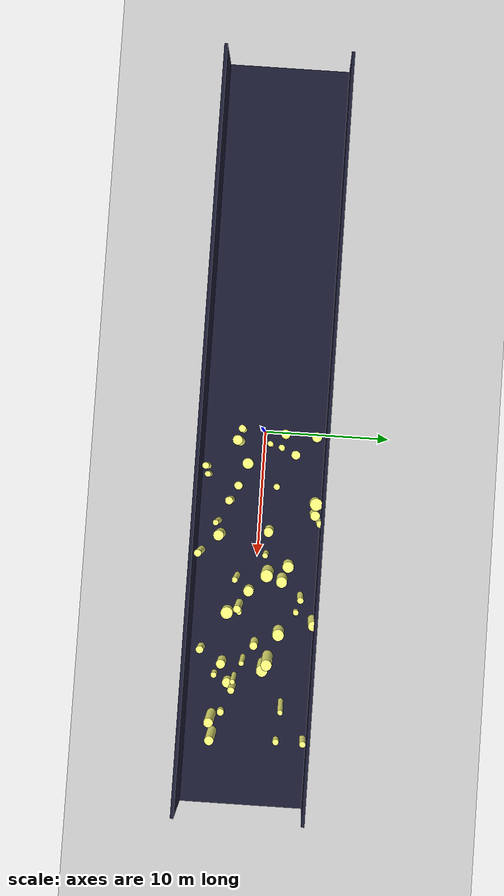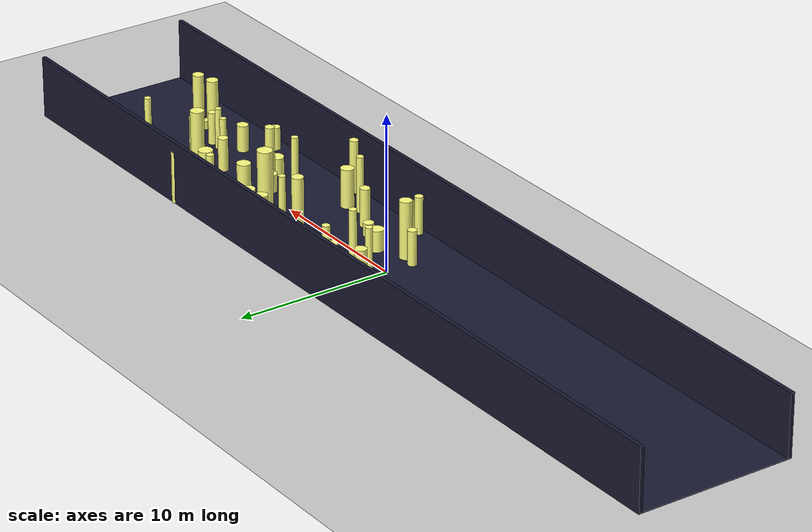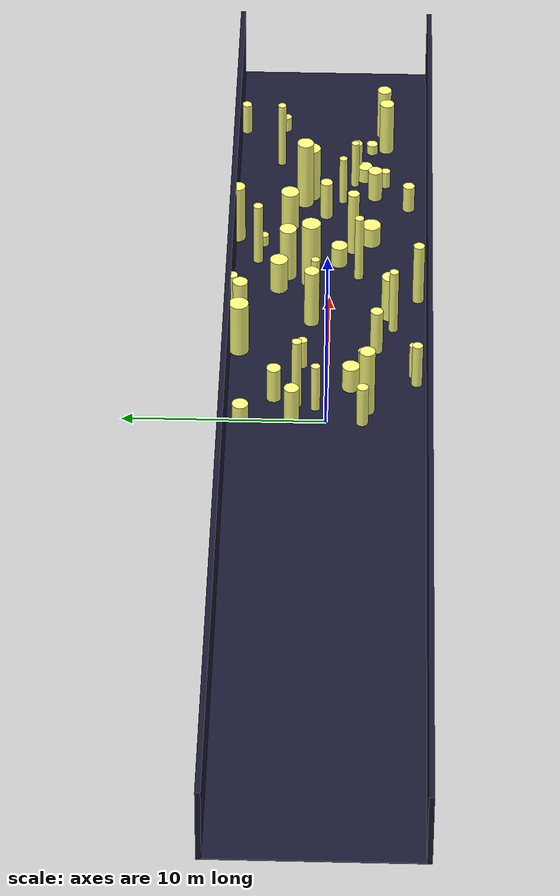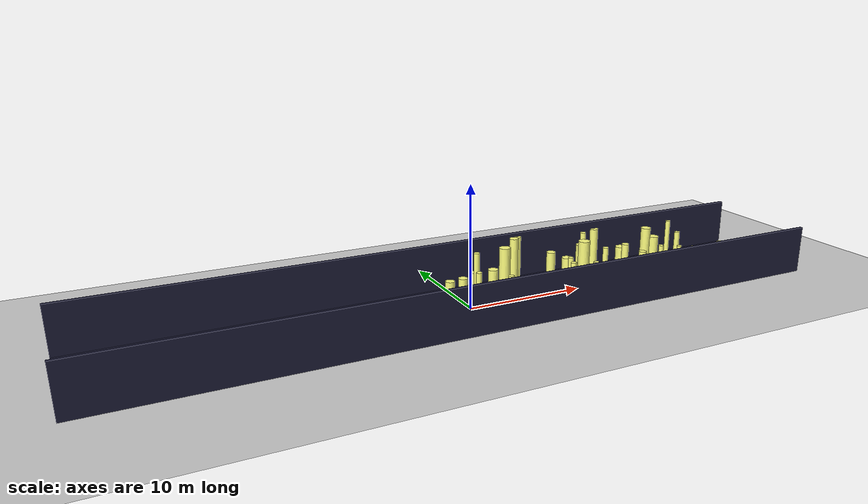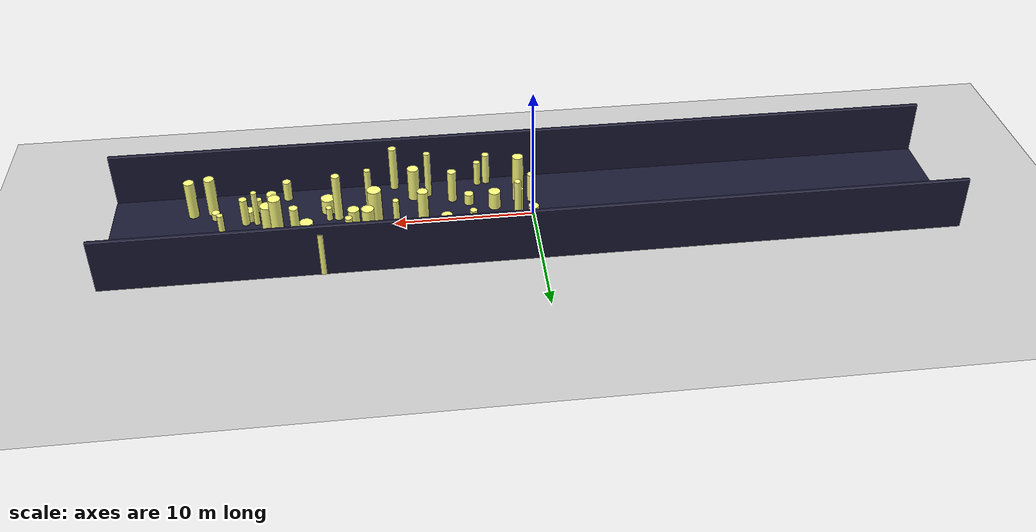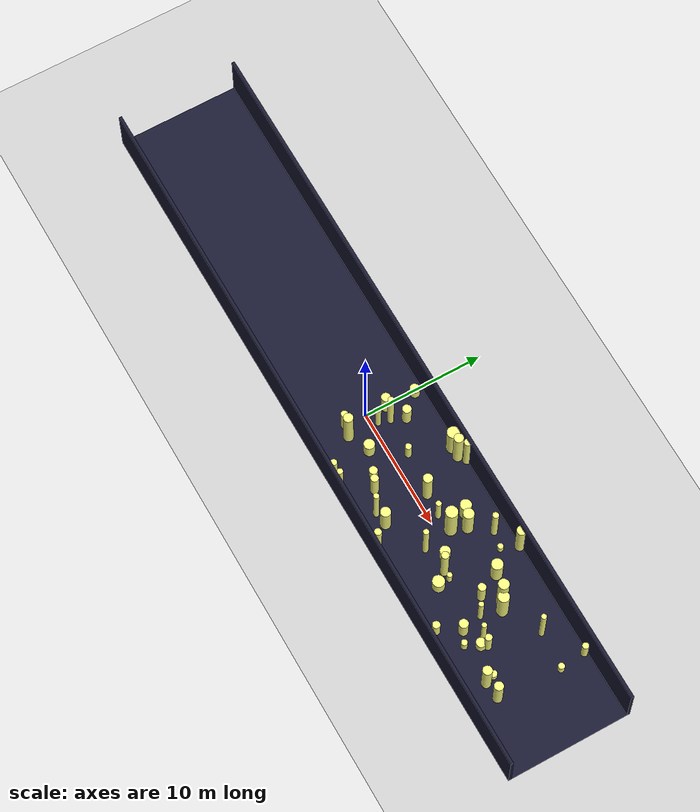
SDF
<sdf version="1.4">
 <world name="default">
  <include><uri>model://ground_plane</uri></include>
  <include><uri>model://sun</uri></include>
  <model name="forest">
   <static>true</static>
   <link name="cylinder2">
    <pose>1.0208947712810428 0.5431389617887925 1.3426531910423 0 0 0</pose>
    <visual name="visual">
     <geometry><cylinder><radius>0.22835501968407046</radius><length>2.6853063820846</length></cylinder></geometry>
     <material>
      <ambient>0.6 0.6 0.6 1</ambient>
      <diffuse>1 1 0.5 1</diffuse>
      <specular>0 0 0</specular>
      <emissive>0 0 0 1</emissive>
     </material>
    </visual>
    <collision name="collision">
     <geometry><cylinder><radius>0.22835501968407046</radius><length>2.6853063820846</length></cylinder></geometry>
     <max_contacts>0</max_contacts>
    </collision>
   </link>
   <link name="cylinder4">
    <pose>14.357380362291096 3.42906190911415 0.33939071130231635 0 0 0</pose>
    <visual name="visual">
     <geometry>
      <cylinder><radius>0.2355430839454062</radius><length>0.6787814226046327</length></cylinder>
     </geometry>
     <material>
      <ambient>0.6 0.6 0.6 1</ambient>
      <diffuse>1 1 0.5 1</diffuse>
      <specular>0 0 0</specular>
      <emissive>0 0 0 1</emissive>
     </material>
    </visual>
    <collision name="collision">
     <geometry>
      <cylinder><radius>0.2355430839454062</radius><length>0.6787814226046327</length></cylinder>
     </geometry>
     <max_contacts>0</max_contacts>
    </collision>
   </link>
   <link name="cylinder5">
    <pose>15.95672619391378 2.1406246882911226 1.1306773054959878 0 0 0</pose>
    <visual name="visual">
     <geometry>
      <cylinder><radius>0.4625027844515846</radius><length>2.2613546109919755</length></cylinder>
     </geometry>
     <material>
      <ambient>0.6 0.6 0.6 1</ambient>
      <diffuse>1 1 0.5 1</diffuse>
      <specular>0 0 0</specular>
      <emissive>0 0 0 1</emissive>
     </material>
    </visual>
    <collision name="collision">
     <geometry>
      <cylinder><radius>0.4625027844515846</radius><length>2.2613546109919755</length></cylinder>
     </geometry>
     <max_contacts>0</max_contacts>
    </collision>
   </link>
   <link name="cylinder6">
    <pose>11.72142793309255 2.1433004032956973 1.518548189066716 0 0 0</pose>
    <visual name="visual">
     <geometry>
      <cylinder><radius>0.43435136117066747</radius><length>3.037096378133432</length></cylinder>
     </geometry>
     <material>
      <ambient>0.6 0.6 0.6 1</ambient>
      <diffuse>1 1 0.5 1</diffuse>
      <specular>0 0 0</specular>
      <emissive>0 0 0 1</emissive>
     </material>
    </visual>
    <collision name="collision">
     <geometry>
      <cylinder><radius>0.43435136117066747</radius><length>3.037096378133432</length></cylinder>
     </geometry>
     <max_contacts>0</max_contacts>
    </collision>
   </link>
   <link name="cylinder8">
    <pose>19.699465234413196 -1.1801976092368216 1.3649806478278046 0 0 0</pose>
    <visual name="visual">
     <geometry>
      <cylinder><radius>0.20254438403527164</radius><length>2.729961295655609</length></cylinder>
     </geometry>
     <material>
      <ambient>0.6 0.6 0.6 1</ambient>
      <diffuse>1 1 0.5 1</diffuse>
      <specular>0 0 0</specular>
      <emissive>0 0 0 1</emissive>
     </material>
    </visual>
    <collision name="collision">
     <geometry>
      <cylinder><radius>0.20254438403527164</radius><length>2.729961295655609</length></cylinder>
     </geometry>
     <max_contacts>0</max_contacts>
    </collision>
   </link>
   <link name="cylinder10">
    <pose>8.441919910510215 -3.0383918934033707 1.2916391931820514 0 0 0</pose>
    <visual name="visual">
     <geometry>
      <cylinder><radius>0.4134336815046562</radius><length>2.583278386364103</length></cylinder>
     </geometry>
     <material>
      <ambient>0.6 0.6 0.6 1</ambient>
      <diffuse>1 1 0.5 1</diffuse>
      <specular>0 0 0</specular>
      <emissive>0 0 0 1</emissive>
     </material>
    </visual>
    <collision name="collision">
     <geometry>
      <cylinder><radius>0.4134336815046562</radius><length>2.583278386364103</length></cylinder>
     </geometry>
     <max_contacts>0</max_contacts>
    </collision>
   </link>
   <link name="cylinder12">
    <pose>24.27517334014935 -2.6602131412921546 1.470125046250434 0 0 0</pose>
    <visual name="visual">
     <geometry>
      <cylinder><radius>0.36455640942420675</radius><length>2.940250092500868</length></cylinder>
     </geometry>
     <material>
      <ambient>0.6 0.6 0.6 1</ambient>
      <diffuse>1 1 0.5 1</diffuse>
      <specular>0 0 0</specular>
      <emissive>0 0 0 1</emissive>
     </material>
    </visual>
    <collision name="collision">
     <geometry>
      <cylinder><radius>0.36455640942420675</radius><length>2.940250092500868</length></cylinder>
     </geometry>
     <max_contacts>0</max_contacts>
    </collision>
   </link>
   <link name="cylinder14">
    <pose>22.65406599161711 -2.0612876650250778 0.30610132249239846 0 0 0</pose>
    <visual name="visual">
     <geometry>
      <cylinder><radius>0.2918572696765596</radius><length>0.6122026449847969</length></cylinder>
     </geometry>
     <material>
      <ambient>0.6 0.6 0.6 1</ambient>
      <diffuse>1 1 0.5 1</diffuse>
      <specular>0 0 0</specular>
      <emissive>0 0 0 1</emissive>
     </material>
    </visual>
    <collision name="collision">
     <geometry>
      <cylinder><radius>0.2918572696765596</radius><length>0.6122026449847969</length></cylinder>
     </geometry>
     <max_contacts>0</max_contacts>
    </collision>
   </link>
   <link name="cylinder18">
    <pose>17.615794449780587 -3.985222112901603 0.7751889481892782 0 0 0</pose>
    <visual name="visual">
     <geometry>
      <cylinder><radius>0.30276084775036843</radius><length>1.5503778963785564</length></cylinder>
     </geometry>
     <material>
      <ambient>0.6 0.6 0.6 1</ambient>
      <diffuse>1 1 0.5 1</diffuse>
      <specular>0 0 0</specular>
      <emissive>0 0 0 1</emissive>
     </material>
    </visual>
    <collision name="collision">
     <geometry>
      <cylinder><radius>0.30276084775036843</radius><length>1.5503778963785564</length></cylinder>
     </geometry>
     <max_contacts>0</max_contacts>
    </collision>
   </link>
   <link name="cylinder20">
    <pose>24.43067726238239 4.62530078184065 0.8967429362178146 0 0 0</pose>
    <visual name="visual">
     <geometry>
      <cylinder><radius>0.25407514421779676</radius><length>1.7934858724356293</length></cylinder>
     </geometry>
     <material>
      <ambient>0.6 0.6 0.6 1</ambient>
      <diffuse>1 1 0.5 1</diffuse>
      <specular>0 0 0</specular>
      <emissive>0 0 0 1</emissive>
     </material>
    </visual>
    <collision name="collision">
     <geometry>
      <cylinder><radius>0.25407514421779676</radius><length>1.7934858724356293</length></cylinder>
     </geometry>
     <max_contacts>0</max_contacts>
    </collision>
   </link>
   <link name="cylinder21">
    <pose>24.65642489110388 2.5068368066967732 0.4347260987845433 0 0 0</pose>
    <visual name="visual">
     <geometry>
      <cylinder><radius>0.25245440863690455</radius><length>0.8694521975690866</length></cylinder>
     </geometry>
     <material>
      <ambient>0.6 0.6 0.6 1</ambient>
      <diffuse>1 1 0.5 1</diffuse>
      <specular>0 0 0</specular>
      <emissive>0 0 0 1</emissive>
     </material>
    </visual>
    <collision name="collision">
     <geometry>
      <cylinder><radius>0.25245440863690455</radius><length>0.8694521975690866</length></cylinder>
     </geometry>
     <max_contacts>0</max_contacts>
    </collision>
   </link>
   <link name="cylinder25">
    <pose>16.9242625028197 0.27205600537427177 1.1013196231043145 0 0 0</pose>
    <visual name="visual">
     <geometry>
      <cylinder><radius>0.3196346392363912</radius><length>2.202639246208629</length></cylinder>
     </geometry>
     <material>
      <ambient>0.6 0.6 0.6 1</ambient>
      <diffuse>1 1 0.5 1</diffuse>
      <specular>0 0 0</specular>
      <emissive>0 0 0 1</emissive>
     </material>
    </visual>
    <collision name="collision">
     <geometry>
      <cylinder><radius>0.3196346392363912</radius><length>2.202639246208629</length></cylinder>
     </geometry>
     <max_contacts>0</max_contacts>
    </collision>
   </link>
   <link name="cylinder27">
    <pose>1.766755526100173 2.604636848300447 0.9732648832684428 0 0 0</pose>
    <visual name="visual">
     <geometry>
      <cylinder><radius>0.35749040720921466</radius><length>1.9465297665368857</length></cylinder>
     </geometry>
     <material>
      <ambient>0.6 0.6 0.6 1</ambient>
      <diffuse>1 1 0.5 1</diffuse>
      <specular>0 0 0</specular>
      <emissive>0 0 0 1</emissive>
     </material>
    </visual>
    <collision name="collision">
     <geometry>
      <cylinder><radius>0.35749040720921466</radius><length>1.9465297665368857</length></cylinder>
     </geometry>
     <max_contacts>0</max_contacts>
    </collision>
   </link>
   <link name="cylinder28">
    <pose>22.880518140336733 -2.802426067439696 1.5214850839309941 0 0 0</pose>
    <visual name="visual">
     <geometry>
      <cylinder><radius>0.3747662969486343</radius><length>3.0429701678619883</length></cylinder>
     </geometry>
     <material>
      <ambient>0.6 0.6 0.6 1</ambient>
      <diffuse>1 1 0.5 1</diffuse>
      <specular>0 0 0</specular>
      <emissive>0 0 0 1</emissive>
     </material>
    </visual>
    <collision name="collision">
     <geometry>
      <cylinder><radius>0.3747662969486343</radius><length>3.0429701678619883</length></cylinder>
     </geometry>
     <max_contacts>0</max_contacts>
    </collision>
   </link>
   <link name="cylinder29">
    <pose>14.892574944241282 4.791217000073189 1.6624655020170058 0 0 0</pose>
    <visual name="visual">
     <geometry>
      <cylinder><radius>0.38092229612289386</radius><length>3.3249310040340117</length></cylinder>
     </geometry>
     <material>
      <ambient>0.6 0.6 0.6 1</ambient>
      <diffuse>1 1 0.5 1</diffuse>
      <specular>0 0 0</specular>
      <emissive>0 0 0 1</emissive>
     </material>
    </visual>
    <collision name="collision">
     <geometry>
      <cylinder><radius>0.38092229612289386</radius><length>3.3249310040340117</length></cylinder>
     </geometry>
     <max_contacts>0</max_contacts>
    </collision>
   </link>
   <link name="cylinder31">
    <pose>5.52481053012815 4.436602579123484 1.4965811906015696 0 0 0</pose>
    <visual name="visual">
     <geometry>
      <cylinder><radius>0.4910310022509187</radius><length>2.993162381203139</length></cylinder>
     </geometry>
     <material>
      <ambient>0.6 0.6 0.6 1</ambient>
      <diffuse>1 1 0.5 1</diffuse>
      <specular>0 0 0</specular>
      <emissive>0 0 0 1</emissive>
     </material>
    </visual>
    <collision name="collision">
     <geometry>
      <cylinder><radius>0.4910310022509187</radius><length>2.993162381203139</length></cylinder>
     </geometry>
     <max_contacts>0</max_contacts>
    </collision>
   </link>
   <link name="cylinder32">
    <pose>10.638708478671752 2.5784878070132837 0.9510251556961719 0 0 0</pose>
    <visual name="visual">
     <geometry>
      <cylinder><radius>0.4526687696213297</radius><length>1.9020503113923437</length></cylinder>
     </geometry>
     <material>
      <ambient>0.6 0.6 0.6 1</ambient>
      <diffuse>1 1 0.5 1</diffuse>
      <specular>0 0 0</specular>
      <emissive>0 0 0 1</emissive>
     </material>
    </visual>
    <collision name="collision">
     <geometry>
      <cylinder><radius>0.4526687696213297</radius><length>1.9020503113923437</length></cylinder>
     </geometry>
     <max_contacts>0</max_contacts>
    </collision>
   </link>
   <link name="cylinder36">
    <pose>9.842615635344423 -4.4811699380795025 1.7462603156904977 0 0 0</pose>
    <visual name="visual">
     <geometry>
      <cylinder><radius>0.2838949741445699</radius><length>3.4925206313809953</length></cylinder>
     </geometry>
     <material>
      <ambient>0.6 0.6 0.6 1</ambient>
      <diffuse>1 1 0.5 1</diffuse>
      <specular>0 0 0</specular>
      <emissive>0 0 0 1</emissive>
     </material>
    </visual>
    <collision name="collision">
     <geometry>
      <cylinder><radius>0.2838949741445699</radius><length>3.4925206313809953</length></cylinder>
     </geometry>
     <max_contacts>0</max_contacts>
    </collision>
   </link>
   <link name="cylinder40">
    <pose>9.787444862353858 0.7200216689745194 1.284834258719329 0 0 0</pose>
    <visual name="visual">
     <geometry>
      <cylinder><radius>0.22169944320740143</radius><length>2.569668517438658</length></cylinder>
     </geometry>
     <material>
      <ambient>0.6 0.6 0.6 1</ambient>
      <diffuse>1 1 0.5 1</diffuse>
      <specular>0 0 0</specular>
      <emissive>0 0 0 1</emissive>
     </material>
    </visual>
    <collision name="collision">
     <geometry>
      <cylinder><radius>0.22169944320740143</radius><length>2.569668517438658</length></cylinder>
     </geometry>
     <max_contacts>0</max_contacts>
    </collision>
   </link>
   <link name="cylinder42">
    <pose>19.651748811338408 -2.774950141528473 0.5063509401220356 0 0 0</pose>
    <visual name="visual">
     <geometry>
      <cylinder><radius>0.24487150854859474</radius><length>1.0127018802440713</length></cylinder>
     </geometry>
     <material>
      <ambient>0.6 0.6 0.6 1</ambient>
      <diffuse>1 1 0.5 1</diffuse>
      <specular>0 0 0</specular>
      <emissive>0 0 0 1</emissive>
     </material>
    </visual>
    <collision name="collision">
     <geometry>
      <cylinder><radius>0.24487150854859474</radius><length>1.0127018802440713</length></cylinder>
     </geometry>
     <max_contacts>0</max_contacts>
    </collision>
   </link>
   <link name="cylinder44">
    <pose>3.053273287268542 -4.424035636804914 1.2382240117531607 0 0 0</pose>
    <visual name="visual">
     <geometry>
      <cylinder><radius>0.2646642352338189</radius><length>2.4764480235063213</length></cylinder>
     </geometry>
     <material>
      <ambient>0.6 0.6 0.6 1</ambient>
      <diffuse>1 1 0.5 1</diffuse>
      <specular>0 0 0</specular>
      <emissive>0 0 0 1</emissive>
     </material>
    </visual>
    <collision name="collision">
     <geometry>
      <cylinder><radius>0.2646642352338189</radius><length>2.4764480235063213</length></cylinder>
     </geometry>
     <max_contacts>0</max_contacts>
    </collision>
   </link>
   <link name="cylinder45">
    <pose>21.557904494474514 2.6938805515932573 1.8765536206004654 0 0 0</pose>
    <visual name="visual">
     <geometry>
      <cylinder><radius>0.21237045270549917</radius><length>3.7531072412009308</length></cylinder>
     </geometry>
     <material>
      <ambient>0.6 0.6 0.6 1</ambient>
      <diffuse>1 1 0.5 1</diffuse>
      <specular>0 0 0</specular>
      <emissive>0 0 0 1</emissive>
     </material>
    </visual>
    <collision name="collision">
     <geometry>
      <cylinder><radius>0.21237045270549917</radius><length>3.7531072412009308</length></cylinder>
     </geometry>
     <max_contacts>0</max_contacts>
    </collision>
   </link>
   <link name="cylinder46">
    <pose>6.371458550900872 4.3896777458545575 1.8508873952760432 0 0 0</pose>
    <visual name="visual">
     <geometry>
      <cylinder><radius>0.38006477681204065</radius><length>3.7017747905520864</length></cylinder>
     </geometry>
     <material>
      <ambient>0.6 0.6 0.6 1</ambient>
      <diffuse>1 1 0.5 1</diffuse>
      <specular>0 0 0</specular>
      <emissive>0 0 0 1</emissive>
     </material>
    </visual>
    <collision name="collision">
     <geometry>
      <cylinder><radius>0.38006477681204065</radius><length>3.7017747905520864</length></cylinder>
     </geometry>
     <max_contacts>0</max_contacts>
    </collision>
   </link>
   <link name="cylinder49">
    <pose>0.9077108083964127 -1.9675311596262701 1.8729571938885456 0 0 0</pose>
    <visual name="visual">
     <geometry>
      <cylinder><radius>0.38956717314669087</radius><length>3.7459143877770913</length></cylinder>
     </geometry>
     <material>
      <ambient>0.6 0.6 0.6 1</ambient>
      <diffuse>1 1 0.5 1</diffuse>
      <specular>0 0 0</specular>
      <emissive>0 0 0 1</emissive>
     </material>
    </visual>
    <collision name="collision">
     <geometry>
      <cylinder><radius>0.38956717314669087</radius><length>3.7459143877770913</length></cylinder>
     </geometry>
     <max_contacts>0</max_contacts>
    </collision>
   </link>
   <link name="cylinder50">
    <pose>20.22069144145675 -1.6902316473149193 0.4480826638899943 0 0 0</pose>
    <visual name="visual">
     <geometry>
      <cylinder><radius>0.3896147406914823</radius><length>0.8961653277799886</length></cylinder>
     </geometry>
     <material>
      <ambient>0.6 0.6 0.6 1</ambient>
      <diffuse>1 1 0.5 1</diffuse>
      <specular>0 0 0</specular>
      <emissive>0 0 0 1</emissive>
     </material>
    </visual>
    <collision name="collision">
     <geometry>
      <cylinder><radius>0.3896147406914823</radius><length>0.8961653277799886</length></cylinder>
     </geometry>
     <max_contacts>0</max_contacts>
    </collision>
   </link>
   <link name="cylinder52">
    <pose>13.91282926646133 -1.1425220211806808 1.8458343097238705 0 0 0</pose>
    <visual name="visual">
     <geometry>
      <cylinder><radius>0.29968491835592337</radius><length>3.691668619447741</length></cylinder>
     </geometry>
     <material>
      <ambient>0.6 0.6 0.6 1</ambient>
      <diffuse>1 1 0.5 1</diffuse>
      <specular>0 0 0</specular>
      <emissive>0 0 0 1</emissive>
     </material>
    </visual>
    <collision name="collision">
     <geometry>
      <cylinder><radius>0.29968491835592337</radius><length>3.691668619447741</length></cylinder>
     </geometry>
     <max_contacts>0</max_contacts>
    </collision>
   </link>
   <link name="cylinder53">
    <pose>14.570356406330326 -1.0845988198534307 0.526169162908307 0 0 0</pose>
    <visual name="visual">
     <geometry>
      <cylinder><radius>0.2136738052224859</radius><length>1.052338325816614</length></cylinder>
     </geometry>
     <material>
      <ambient>0.6 0.6 0.6 1</ambient>
      <diffuse>1 1 0.5 1</diffuse>
      <specular>0 0 0</specular>
      <emissive>0 0 0 1</emissive>
     </material>
    </visual>
    <collision name="collision">
     <geometry>
      <cylinder><radius>0.2136738052224859</radius><length>1.052338325816614</length></cylinder>
     </geometry>
     <max_contacts>0</max_contacts>
    </collision>
   </link>
   <link name="cylinder56">
    <pose>11.680517029762456 -1.4622517701835602 1.8934097695614955 0 0 0</pose>
    <visual name="visual">
     <geometry>
      <cylinder><radius>0.22807935670510243</radius><length>3.786819539122991</length></cylinder>
     </geometry>
     <material>
      <ambient>0.6 0.6 0.6 1</ambient>
      <diffuse>1 1 0.5 1</diffuse>
      <specular>0 0 0</specular>
      <emissive>0 0 0 1</emissive>
     </material>
    </visual>
    <collision name="collision">
     <geometry>
      <cylinder><radius>0.22807935670510243</radius><length>3.786819539122991</length></cylinder>
     </geometry>
     <max_contacts>0</max_contacts>
    </collision>
   </link>
   <link name="cylinder58">
    <pose>18.219272708670104 -0.5731922625484129 1.39572823679055 0 0 0</pose>
    <visual name="visual">
     <geometry><cylinder><radius>0.2090032674333993</radius><length>2.7914564735811</length></cylinder></geometry>
     <material>
      <ambient>0.6 0.6 0.6 1</ambient>
      <diffuse>1 1 0.5 1</diffuse>
      <specular>0 0 0</specular>
      <emissive>0 0 0 1</emissive>
     </material>
    </visual>
    <collision name="collision">
     <geometry><cylinder><radius>0.2090032674333993</radius><length>2.7914564735811</length></cylinder></geometry>
     <max_contacts>0</max_contacts>
    </collision>
   </link>
   <link name="cylinder59">
    <pose>12.97574490092537 3.696822736332722 1.759783746517989 0 0 0</pose>
    <visual name="visual">
     <geometry>
      <cylinder><radius>0.24936996763848188</radius><length>3.519567493035978</length></cylinder>
     </geometry>
     <material>
      <ambient>0.6 0.6 0.6 1</ambient>
      <diffuse>1 1 0.5 1</diffuse>
      <specular>0 0 0</specular>
      <emissive>0 0 0 1</emissive>
     </material>
    </visual>
    <collision name="collision">
     <geometry>
      <cylinder><radius>0.24936996763848188</radius><length>3.519567493035978</length></cylinder>
     </geometry>
     <max_contacts>0</max_contacts>
    </collision>
   </link>
   <link name="cylinder66">
    <pose>20.508849914495485 -1.267296728364383 1.076714446576657 0 0 0</pose>
    <visual name="visual">
     <geometry><cylinder><radius>0.278850266048974</radius><length>2.153428893153314</length></cylinder></geometry>
     <material>
      <ambient>0.6 0.6 0.6 1</ambient>
      <diffuse>1 1 0.5 1</diffuse>
      <specular>0 0 0</specular>
      <emissive>0 0 0 1</emissive>
     </material>
    </visual>
    <collision name="collision">
     <geometry><cylinder><radius>0.278850266048974</radius><length>2.153428893153314</length></cylinder></geometry>
     <max_contacts>0</max_contacts>
    </collision>
   </link>
   <link name="cylinder68">
    <pose>18.63026171258489 1.0680174163638405 1.5602171152880673 0 0 0</pose>
    <visual name="visual">
     <geometry>
      <cylinder><radius>0.45111096592371835</radius><length>3.1204342305761346</length></cylinder>
     </geometry>
     <material>
      <ambient>0.6 0.6 0.6 1</ambient>
      <diffuse>1 1 0.5 1</diffuse>
      <specular>0 0 0</specular>
      <emissive>0 0 0 1</emissive>
     </material>
    </visual>
    <collision name="collision">
     <geometry>
      <cylinder><radius>0.45111096592371835</radius><length>3.1204342305761346</length></cylinder>
     </geometry>
     <max_contacts>0</max_contacts>
    </collision>
   </link>
   <link name="cylinder70">
    <pose>18.59365218191281 -2.234116072636466 0.8902076245675825 0 0 0</pose>
    <visual name="visual">
     <geometry>
      <cylinder><radius>0.3676909280292403</radius><length>1.780415249135165</length></cylinder>
     </geometry>
     <material>
      <ambient>0.6 0.6 0.6 1</ambient>
      <diffuse>1 1 0.5 1</diffuse>
      <specular>0 0 0</specular>
      <emissive>0 0 0 1</emissive>
     </material>
    </visual>
    <collision name="collision">
     <geometry>
      <cylinder><radius>0.3676909280292403</radius><length>1.780415249135165</length></cylinder>
     </geometry>
     <max_contacts>0</max_contacts>
    </collision>
   </link>
   <link name="cylinder72">
    <pose>6.988228220270027 4.815175432624946 1.8259676523057293 0 0 0</pose>
    <visual name="visual">
     <geometry>
      <cylinder><radius>0.28592563356786765</radius><length>3.6519353046114587</length></cylinder>
     </geometry>
     <material>
      <ambient>0.6 0.6 0.6 1</ambient>
      <diffuse>1 1 0.5 1</diffuse>
      <specular>0 0 0</specular>
      <emissive>0 0 0 1</emissive>
     </material>
    </visual>
    <collision name="collision">
     <geometry>
      <cylinder><radius>0.28592563356786765</radius><length>3.6519353046114587</length></cylinder>
     </geometry>
     <max_contacts>0</max_contacts>
    </collision>
   </link>
   <link name="cylinder74">
    <pose>1.2786879112022085 1.4772858881796367 1.9936338594966154 0 0 0</pose>
    <visual name="visual">
     <geometry>
      <cylinder><radius>0.2418467816921741</radius><length>3.987267718993231</length></cylinder>
     </geometry>
     <material>
      <ambient>0.6 0.6 0.6 1</ambient>
      <diffuse>1 1 0.5 1</diffuse>
      <specular>0 0 0</specular>
      <emissive>0 0 0 1</emissive>
     </material>
    </visual>
    <collision name="collision">
     <geometry>
      <cylinder><radius>0.2418467816921741</radius><length>3.987267718993231</length></cylinder>
     </geometry>
     <max_contacts>0</max_contacts>
    </collision>
   </link>
   <link name="cylinder75">
    <pose>4.501556775065492 -1.8392688610488914 0.454732961760442 0 0 0</pose>
    <visual name="visual">
     <geometry>
      <cylinder><radius>0.3343402064827117</radius><length>0.909465923520884</length></cylinder>
     </geometry>
     <material>
      <ambient>0.6 0.6 0.6 1</ambient>
      <diffuse>1 1 0.5 1</diffuse>
      <specular>0 0 0</specular>
      <emissive>0 0 0 1</emissive>
     </material>
    </visual>
    <collision name="collision">
     <geometry>
      <cylinder><radius>0.3343402064827117</radius><length>0.909465923520884</length></cylinder>
     </geometry>
     <max_contacts>0</max_contacts>
    </collision>
   </link>
   <link name="cylinder76">
    <pose>18.012123298633945 1.392924428052206 1.9453030400608022 0 0 0</pose>
    <visual name="visual">
     <geometry>
      <cylinder><radius>0.4276855502406284</radius><length>3.8906060801216045</length></cylinder>
     </geometry>
     <material>
      <ambient>0.6 0.6 0.6 1</ambient>
      <diffuse>1 1 0.5 1</diffuse>
      <specular>0 0 0</specular>
      <emissive>0 0 0 1</emissive>
     </material>
    </visual>
    <collision name="collision">
     <geometry>
      <cylinder><radius>0.4276855502406284</radius><length>3.8906060801216045</length></cylinder>
     </geometry>
     <max_contacts>0</max_contacts>
    </collision>
   </link>
   <link name="cylinder77">
    <pose>5.678089779175448 -2.4043518438193514 1.266493088064295 0 0 0</pose>
    <visual name="visual">
     <geometry>
      <cylinder><radius>0.31416564233842365</radius><length>2.53298617612859</length></cylinder>
     </geometry>
     <material>
      <ambient>0.6 0.6 0.6 1</ambient>
      <diffuse>1 1 0.5 1</diffuse>
      <specular>0 0 0</specular>
      <emissive>0 0 0 1</emissive>
     </material>
    </visual>
    <collision name="collision">
     <geometry>
      <cylinder><radius>0.31416564233842365</radius><length>2.53298617612859</length></cylinder>
     </geometry>
     <max_contacts>0</max_contacts>
    </collision>
   </link>
   <link name="cylinder78">
    <pose>4.377549984084268 1.2494620029301764 0.826203785028824 0 0 0</pose>
    <visual name="visual">
     <geometry>
      <cylinder><radius>0.2525851077371312</radius><length>1.652407570057648</length></cylinder>
     </geometry>
     <material>
      <ambient>0.6 0.6 0.6 1</ambient>
      <diffuse>1 1 0.5 1</diffuse>
      <specular>0 0 0</specular>
      <emissive>0 0 0 1</emissive>
     </material>
    </visual>
    <collision name="collision">
     <geometry>
      <cylinder><radius>0.2525851077371312</radius><length>1.652407570057648</length></cylinder>
     </geometry>
     <max_contacts>0</max_contacts>
    </collision>
   </link>
   <link name="cylinder79">
    <pose>14.657808848165566 -2.0695588022804223 0.5971527342500363 0 0 0</pose>
    <visual name="visual">
     <geometry>
      <cylinder><radius>0.48939864652828863</radius><length>1.1943054685000727</length></cylinder>
     </geometry>
     <material>
      <ambient>0.6 0.6 0.6 1</ambient>
      <diffuse>1 1 0.5 1</diffuse>
      <specular>0 0 0</specular>
      <emissive>0 0 0 1</emissive>
     </material>
    </visual>
    <collision name="collision">
     <geometry>
      <cylinder><radius>0.48939864652828863</radius><length>1.1943054685000727</length></cylinder>
     </geometry>
     <max_contacts>0</max_contacts>
    </collision>
   </link>
   <link name="cylinder81">
    <pose>-0.05255508791465857 -1.7598619239135793 1.1449377439148167 0 0 0</pose>
    <visual name="visual">
     <geometry>
      <cylinder><radius>0.2880830216720087</radius><length>2.2898754878296335</length></cylinder>
     </geometry>
     <material>
      <ambient>0.6 0.6 0.6 1</ambient>
      <diffuse>1 1 0.5 1</diffuse>
      <specular>0 0 0</specular>
      <emissive>0 0 0 1</emissive>
     </material>
    </visual>
    <collision name="collision">
     <geometry>
      <cylinder><radius>0.2880830216720087</radius><length>2.2898754878296335</length></cylinder>
     </geometry>
     <max_contacts>0</max_contacts>
    </collision>
   </link>
   <link name="cylinder88">
    <pose>2.6847611683904553 -1.1698557262620488 0.7098764011761667 0 0 0</pose>
    <visual name="visual">
     <geometry>
      <cylinder><radius>0.4350514868006863</radius><length>1.4197528023523334</length></cylinder>
     </geometry>
     <material>
      <ambient>0.6 0.6 0.6 1</ambient>
      <diffuse>1 1 0.5 1</diffuse>
      <specular>0 0 0</specular>
      <emissive>0 0 0 1</emissive>
     </material>
    </visual>
    <collision name="collision">
     <geometry>
      <cylinder><radius>0.4350514868006863</radius><length>1.4197528023523334</length></cylinder>
     </geometry>
     <max_contacts>0</max_contacts>
    </collision>
   </link>
   <link name="cylinder90">
    <pose>7.890863482127891 0.8721504641471842 1.6454307332275928 0 0 0</pose>
    <visual name="visual">
     <geometry>
      <cylinder><radius>0.3752521081654319</radius><length>3.2908614664551856</length></cylinder>
     </geometry>
     <material>
      <ambient>0.6 0.6 0.6 1</ambient>
      <diffuse>1 1 0.5 1</diffuse>
      <specular>0 0 0</specular>
      <emissive>0 0 0 1</emissive>
     </material>
    </visual>
    <collision name="collision">
     <geometry>
      <cylinder><radius>0.3752521081654319</radius><length>3.2908614664551856</length></cylinder>
     </geometry>
     <max_contacts>0</max_contacts>
    </collision>
   </link>
   <link name="cylinder91">
    <pose>7.3823722382528345 -3.236948380423945 1.8451387561706478 0 0 0</pose>
    <visual name="visual">
     <geometry>
      <cylinder><radius>0.22976091326589818</radius><length>3.6902775123412956</length></cylinder>
     </geometry>
     <material>
      <ambient>0.6 0.6 0.6 1</ambient>
      <diffuse>1 1 0.5 1</diffuse>
      <specular>0 0 0</specular>
      <emissive>0 0 0 1</emissive>
     </material>
    </visual>
    <collision name="collision">
     <geometry>
      <cylinder><radius>0.22976091326589818</radius><length>3.6902775123412956</length></cylinder>
     </geometry>
     <max_contacts>0</max_contacts>
    </collision>
   </link>
   <link name="cylinder93">
    <pose>11.224602481783016 0.9668422340053802 1.8741726793939901 0 0 0</pose>
    <visual name="visual">
     <geometry>
      <cylinder><radius>0.4874404509339337</radius><length>3.7483453587879803</length></cylinder>
     </geometry>
     <material>
      <ambient>0.6 0.6 0.6 1</ambient>
      <diffuse>1 1 0.5 1</diffuse>
      <specular>0 0 0</specular>
      <emissive>0 0 0 1</emissive>
     </material>
    </visual>
    <collision name="collision">
     <geometry>
      <cylinder><radius>0.4874404509339337</radius><length>3.7483453587879803</length></cylinder>
     </geometry>
     <max_contacts>0</max_contacts>
    </collision>
   </link>
   <link name="cylinder94">
    <pose>0.21720231738503415 4.204614931770449 0.4558929877954452 0 0 0</pose>
    <visual name="visual">
     <geometry>
      <cylinder><radius>0.4034518986634813</radius><length>0.9117859755908904</length></cylinder>
     </geometry>
     <material>
      <ambient>0.6 0.6 0.6 1</ambient>
      <diffuse>1 1 0.5 1</diffuse>
      <specular>0 0 0</specular>
      <emissive>0 0 0 1</emissive>
     </material>
    </visual>
    <collision name="collision">
     <geometry>
      <cylinder><radius>0.4034518986634813</radius><length>0.9117859755908904</length></cylinder>
     </geometry>
     <max_contacts>0</max_contacts>
    </collision>
   </link>
   <link name="cylinder97">
    <pose>3.71528894908878 -4.264615667053981 0.9748821497205912 0 0 0</pose>
    <visual name="visual">
     <geometry>
      <cylinder><radius>0.2385064122778099</radius><length>1.9497642994411823</length></cylinder>
     </geometry>
     <material>
      <ambient>0.6 0.6 0.6 1</ambient>
      <diffuse>1 1 0.5 1</diffuse>
      <specular>0 0 0</specular>
      <emissive>0 0 0 1</emissive>
     </material>
    </visual>
    <collision name="collision">
     <geometry>
      <cylinder><radius>0.2385064122778099</radius><length>1.9497642994411823</length></cylinder>
     </geometry>
     <max_contacts>0</max_contacts>
    </collision>
   </link>
   <link name="cylinder98">
    <pose>12.826513454499882 -0.45138724180820855 0.606929630822486 0 0 0</pose>
    <visual name="visual">
     <geometry>
      <cylinder><radius>0.4142374306012374</radius><length>1.213859261644972</length></cylinder>
     </geometry>
     <material>
      <ambient>0.6 0.6 0.6 1</ambient>
      <diffuse>1 1 0.5 1</diffuse>
      <specular>0 0 0</specular>
      <emissive>0 0 0 1</emissive>
     </material>
    </visual>
    <collision name="collision">
     <geometry>
      <cylinder><radius>0.4142374306012374</radius><length>1.213859261644972</length></cylinder>
     </geometry>
     <max_contacts>0</max_contacts>
    </collision>
   </link>
   <link name="cylinder99">
    <pose>0.1675489832382091 1.697327352893617 0.9948611197780597 0 0 0</pose>
    <visual name="visual">
     <geometry>
      <cylinder><radius>0.3717321692021111</radius><length>1.9897222395561194</length></cylinder>
     </geometry>
     <material>
      <ambient>0.6 0.6 0.6 1</ambient>
      <diffuse>1 1 0.5 1</diffuse>
      <specular>0 0 0</specular>
      <emissive>0 0 0 1</emissive>
     </material>
    </visual>
    <collision name="collision">
     <geometry>
      <cylinder><radius>0.3717321692021111</radius><length>1.9897222395561194</length></cylinder>
     </geometry>
     <max_contacts>0</max_contacts>
    </collision>
   </link>
   <link name="cube0">
    <pose>0 5.0 2.0 0 0 0</pose>
    <visual name="visual">
     <geometry><box><size>60.0 0.25 4.0</size></box></geometry>
     <material>
      <ambient>0.1 0.1 0.1 1</ambient>
      <diffuse>0.1 0.1 0.2 1</diffuse>
      <specular>0 0 0</specular>
      <emissive>0 0 0 1</emissive>
     </material>
    </visual>
    <collision name="collision">
     <geometry><box><size>60.0 0.25 4.0</size></box></geometry>
     <max_contacts>0</max_contacts>
    </collision>
   </link>
   <link name="cube1">
    <pose>0 -5.0 2.0 0 0 0</pose>
    <visual name="visual">
     <geometry><box><size>60.0 0.25 4.0</size></box></geometry>
     <material>
      <ambient>0.1 0.1 0.1 1</ambient>
      <diffuse>0.1 0.1 0.2 1</diffuse>
      <specular>0 0 0</specular>
      <emissive>0 0 0 1</emissive>
     </material>
    </visual>
    <collision name="collision">
     <geometry><box><size>60.0 0.25 4.0</size></box></geometry>
     <max_contacts>0</max_contacts>
    </collision>
   </link>
   <link name="cube2">
    <pose>0 0 0.03125 0 0 0</pose>
    <visual name="visual">
     <geometry><box><size>60.0 10 0.0625</size></box></geometry>
     <material>
      <ambient>0.1 0.1 0.1 1</ambient>
      <diffuse>0.1 0.1 0.2 1</diffuse>
      <specular>0 0 0</specular>
      <emissive>0 0 0 1</emissive>
     </material>
    </visual>
    <collision name="collision">
     <geometry><box><size>60.0 10 0.0625</size></box></geometry>
     <max_contacts>0</max_contacts>
    </collision>
   </link>
  </model>
 </world>
</sdf>
